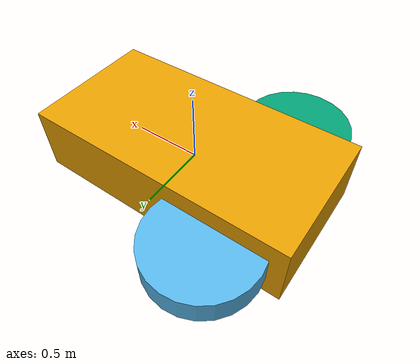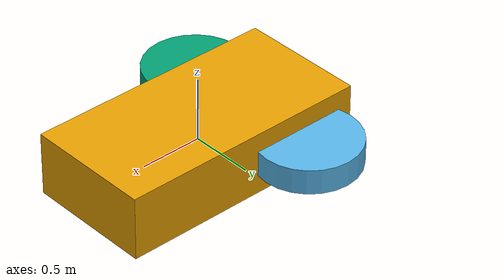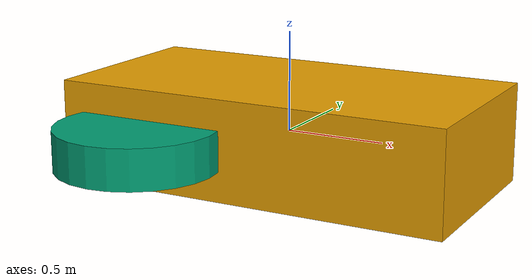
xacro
<?xml version="1.0"?>
<robot name="vehicle_blue" xmlns:xacro="http://www.ros.org/wiki/xacro">

  <!-- BASE -->
  <link name="base_link">

    <inertial>
      <mass value="1.0"/>
      <inertia ixx="0.1" iyy="0.1" izz="0.1"
               ixy="0.0" ixz="0.0" iyz="0.0"/>
    </inertial>

    <visual>
      <geometry>
        <box size="2 1 0.5"/>
      </geometry>
    </visual>

    <collision>
      <geometry>
        <box size="2 1 0.5"/>
      </geometry>
    </collision>

  </link>

  <!-- LEFT WHEEL -->
  <link name="left_wheel">

    <inertial>
      <mass value="0.5"/>
      <inertia ixx="0.01" iyy="0.01" izz="0.01"
               ixy="0.0" ixz="0.0" iyz="0.0"/>
    </inertial>

    <visual>
      <geometry>
        <cylinder radius="0.4" length="0.2"/>
      </geometry>
    </visual>

    <collision>
      <geometry>
        <cylinder radius="0.4" length="0.2"/>
      </geometry>
    </collision>

  </link>

  <!-- RIGHT WHEEL -->
  <link name="right_wheel">

    <inertial>
      <mass value="0.5"/>
      <inertia ixx="0.01" iyy="0.01" izz="0.01"
               ixy="0.0" ixz="0.0" iyz="0.0"/>
    </inertial>

    <visual>
      <geometry>
        <cylinder radius="0.4" length="0.2"/>
      </geometry>
    </visual>

    <collision>
      <geometry>
        <cylinder radius="0.4" length="0.2"/>
      </geometry>
    </collision>

  </link>

  <!-- JOINTS -->
  <joint name="left_wheel_joint" type="continuous">
    <parent link="base_link"/>
    <child link="left_wheel"/>
    <origin xyz="-0.5 0.6 0" rpy="0 0 0"/>
    <axis xyz="0 1 0"/>
  </joint>

  <joint name="right_wheel_joint" type="continuous">
    <parent link="base_link"/>
    <child link="right_wheel"/>
    <origin xyz="-0.5 -0.6 0" rpy="0 0 0"/>
    <axis xyz="0 1 0"/>
  </joint>

  <!-- GAZEBO DIFF DRIVE -->
  <gazebo>
    <plugin name="diff_drive" filename="gz-sim-diff-drive-system">
      <left_joint>left_wheel_joint</left_joint>
      <right_joint>right_wheel_joint</right_joint>
      <wheel_separation>1.2</wheel_separation>
      <wheel_radius>0.4</wheel_radius>

      <topic>/cmd_vel</topic>
      <odom_topic>/odom</odom_topic>
      <tf_topic>/tf</tf_topic>
    </plugin>
  </gazebo>

</robot>
